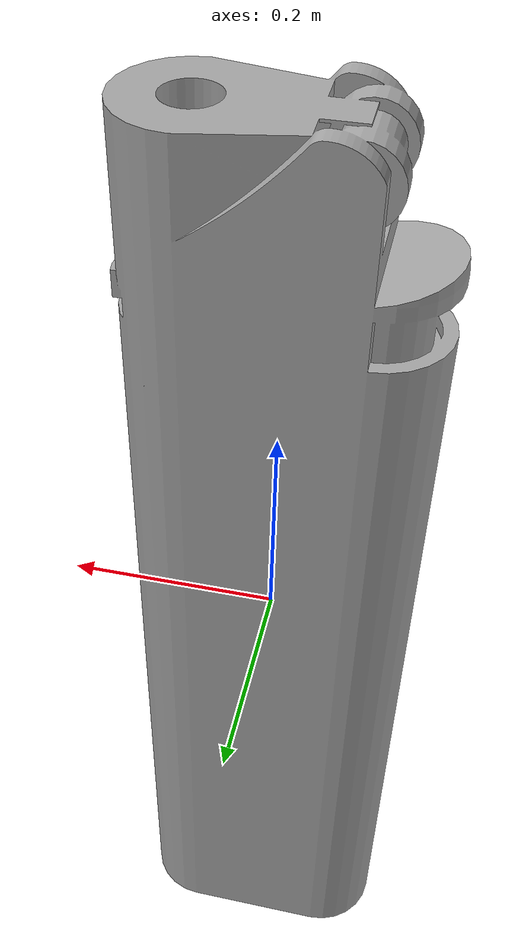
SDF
<?xml version="1.0" ?>
<sdf version="1.5">
  <model name='lighter5'>
    <pose>0 0 0 0 0 0</pose>
    <static>1</static>
    <link name='body'>
      <collision name="lighter5-coll">
        <pose>0 0 -0.5 0 0 0</pose>
        <geometry>
          <mesh>
            <uri>model://lighter5/meshes/lighter5.dae</uri>
          </mesh>
        </geometry>
      </collision>
      <visual name='lighter5'>
        <cast_shadows>1</cast_shadows>
        <pose>0 0 -0.5 0 0 0</pose>
        <geometry>
          <mesh>
            <uri>model://lighter5/meshes/lighter5.dae</uri>
          </mesh>
        </geometry>
      </visual>
      <velocity_decay>
        <linear>0</linear>
        <angular>0</angular>
      </velocity_decay>
      <self_collide>0</self_collide>
      <kinematic>0</kinematic>
      <gravity>1</gravity>
    </link>
  </model>

</sdf>
